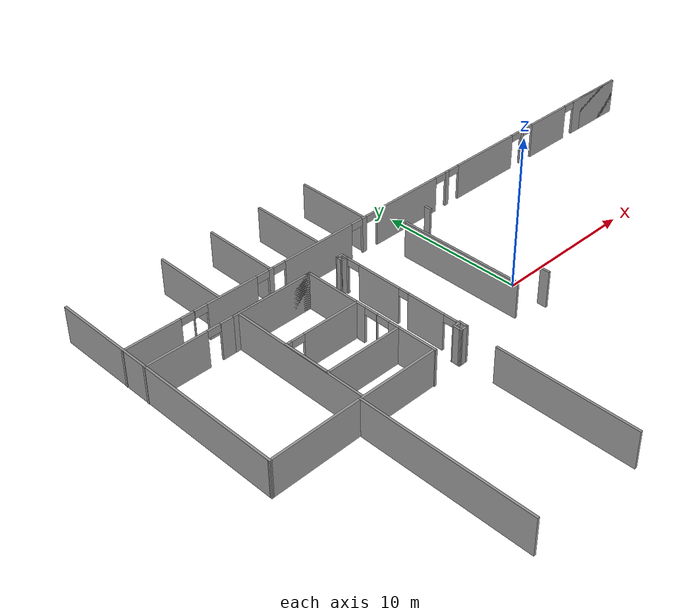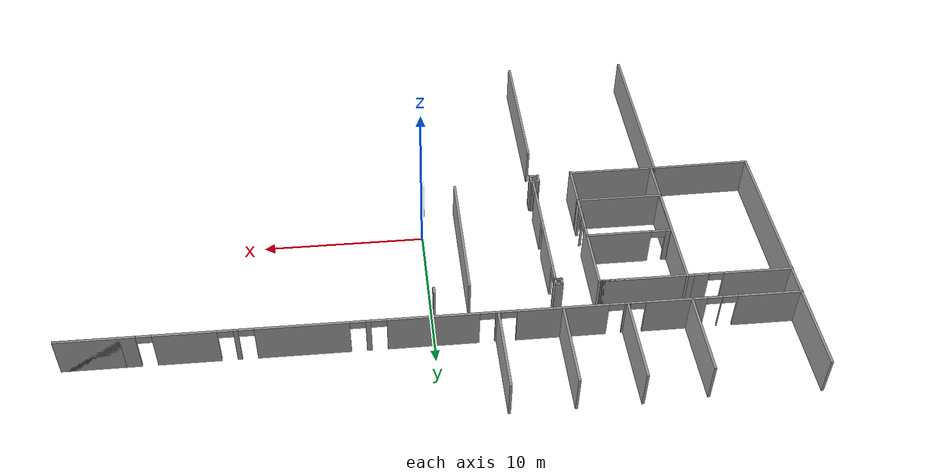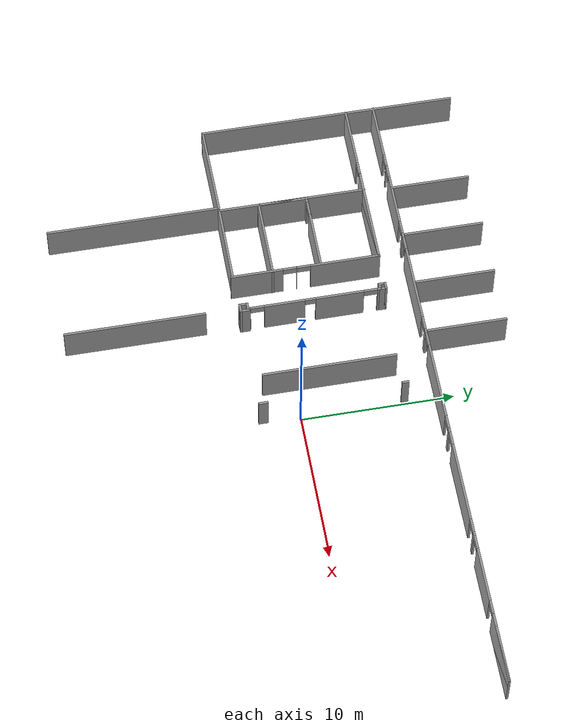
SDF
<sdf version="1.6">
 <model name="L8_4_gazebo">
  <pose>-0.001511 -0.004516 0 0 -0 0</pose>
  <link name="Wall_12">
   <pose>-15.6834 6.94104 0 0 -0 0</pose>
   <visual name="Wall_12_Visual_0">
    <pose>-3.77146 0 1.25 0 -0 0</pose>
    <geometry><box><size>4.20709 0.15 2.5</size></box></geometry>
    <material>
     <script><uri>file://media/materials/scripts/gazebo.material</uri><name>Gazebo/Grey</name></script>
     <ambient>1 1 1 1</ambient>
    </material>
    <meta><layer>0</layer></meta>
   </visual>
   <collision name="Wall_12_Collision_0">
    <geometry><box><size>4.20709 0.15 2.5</size></box></geometry>
    <pose>-3.77146 0 1.25 0 -0 0</pose>
   </collision>
   <visual name="Wall_12_Visual_1">
    <pose>2.55355 0 1.25 0 -0 0</pose>
    <geometry><box><size>6.64291 0.15 2.5</size></box></geometry>
    <material>
     <script><uri>file://media/materials/scripts/gazebo.material</uri><name>Gazebo/Grey</name></script>
     <ambient>1 1 1 1</ambient>
    </material>
    <meta><layer>0</layer></meta>
   </visual>
   <collision name="Wall_12_Collision_1">
    <geometry><box><size>6.64291 0.15 2.5</size></box></geometry>
    <pose>2.55355 0 1.25 0 -0 0</pose>
   </collision>
   <visual name="Wall_12_Visual_2">
    <pose>2.99355 0 1.25 0 -0 0</pose>
    <geometry><box><size>5.76291 0.15 2.5</size></box></geometry>
    <material>
     <script><uri>file://media/materials/scripts/gazebo.material</uri><name>Gazebo/Grey</name></script>
     <ambient>1 1 1 1</ambient>
    </material>
    <meta><layer>0</layer></meta>
   </visual>
   <collision name="Wall_12_Collision_2">
    <geometry><box><size>5.76291 0.15 2.5</size></box></geometry>
    <pose>2.99355 0 1.25 0 -0 0</pose>
   </collision>
   <visual name="Wall_12_Visual_3">
    <pose>-1.22791 0 2.25 0 -0 0</pose>
    <geometry><box><size>0.880003 0.15 0.5</size></box></geometry>
    <material>
     <script><uri>file://media/materials/scripts/gazebo.material</uri><name>Gazebo/Grey</name></script>
     <ambient>1 1 1 1</ambient>
    </material>
    <meta><layer>0</layer></meta>
   </visual>
   <collision name="Wall_12_Collision_3">
    <geometry><box><size>0.880003 0.15 0.5</size></box></geometry>
    <pose>-1.22791 0 2.25 0 -0 0</pose>
   </collision>
  </link>
  <link name="Wall_13">
   <pose>-9.88336 2.08119 0 0 -0 -1.5708</pose>
   <visual name="Wall_13_Visual_0">
    <pose>-2.63558 0 1.25 0 -0 0</pose>
    <geometry><box><size>4.59855 0.15 2.5</size></box></geometry>
    <material>
     <script><uri>file://media/materials/scripts/gazebo.material</uri><name>Gazebo/Grey</name></script>
     <ambient>1 1 1 1</ambient>
    </material>
    <meta><layer>0</layer></meta>
   </visual>
   <collision name="Wall_13_Collision_0">
    <geometry><box><size>4.59855 0.15 2.5</size></box></geometry>
    <pose>-2.63558 0 1.25 0 -0 0</pose>
   </collision>
   <visual name="Wall_13_Visual_1">
    <pose>0.576074 0 1.25 0 -0 0</pose>
    <geometry><box><size>0.024749 0.15 2.5</size></box></geometry>
    <material>
     <script><uri>file://media/materials/scripts/gazebo.material</uri><name>Gazebo/Grey</name></script>
     <ambient>1 1 1 1</ambient>
    </material>
    <meta><layer>0</layer></meta>
   </visual>
   <collision name="Wall_13_Collision_1">
    <geometry><box><size>0.024749 0.15 2.5</size></box></geometry>
    <pose>0.576074 0 1.25 0 -0 0</pose>
   </collision>
   <visual name="Wall_13_Visual_2">
    <pose>3.21165 0 1.25 0 -0 0</pose>
    <geometry><box><size>3.4464 0.15 2.5</size></box></geometry>
    <material>
     <script><uri>file://media/materials/scripts/gazebo.material</uri><name>Gazebo/Grey</name></script>
     <ambient>1 1 1 1</ambient>
    </material>
    <meta><layer>0</layer></meta>
   </visual>
   <collision name="Wall_13_Collision_2">
    <geometry><box><size>3.4464 0.15 2.5</size></box></geometry>
    <pose>3.21165 0 1.25 0 -0 0</pose>
   </collision>
   <visual name="Wall_13_Visual_3">
    <pose>0.113699 0 2.25 0 -0 0</pose>
    <geometry><box><size>0.9 0.15 0.5</size></box></geometry>
    <material>
     <script><uri>file://media/materials/scripts/gazebo.material</uri><name>Gazebo/Grey</name></script>
     <ambient>1 1 1 1</ambient>
    </material>
    <meta><layer>0</layer></meta>
   </visual>
   <collision name="Wall_13_Collision_3">
    <geometry><box><size>0.9 0.15 0.5</size></box></geometry>
    <pose>0.113699 0 2.25 0 -0 0</pose>
   </collision>
   <visual name="Wall_13_Visual_4">
    <pose>1.03845 0 2.25 0 -0 0</pose>
    <geometry><box><size>0.9 0.15 0.5</size></box></geometry>
    <material>
     <script><uri>file://media/materials/scripts/gazebo.material</uri><name>Gazebo/Grey</name></script>
     <ambient>1 1 1 1</ambient>
    </material>
    <meta><layer>0</layer></meta>
   </visual>
   <collision name="Wall_13_Collision_4">
    <geometry><box><size>0.9 0.15 0.5</size></box></geometry>
    <pose>1.03845 0 2.25 0 -0 0</pose>
   </collision>
  </link>
  <link name="Wall_14">
   <collision name="Wall_14_Collision">
    <geometry><box><size>5.5 0.15 2.5</size></box></geometry>
    <pose>0 0 1.25 0 -0 0</pose>
   </collision>
   <visual name="Wall_14_Visual">
    <pose>0 0 1.25 0 -0 0</pose>
    <geometry><box><size>5.5 0.15 2.5</size></box></geometry>
    <material>
     <script><uri>file://media/materials/scripts/gazebo.material</uri><name>Gazebo/Grey</name></script>
     <ambient>1 1 1 1</ambient>
    </material>
    <meta><layer>0</layer></meta>
   </visual>
   <pose>-12.5584 -2.71881 0 0 -0 3.14159</pose>
  </link>
  <link name="Wall_27">
   <collision name="Wall_27_Collision">
    <geometry><box><size>0.511591 0.15 2.5</size></box></geometry>
    <pose>0 0 1.25 0 -0 0</pose>
   </collision>
   <visual name="Wall_27_Visual">
    <pose>0 0 1.25 0 -0 0</pose>
    <geometry><box><size>0.511591 0.15 2.5</size></box></geometry>
    <material>
     <script><uri>file://media/materials/scripts/gazebo.material</uri><name>Gazebo/Grey</name></script>
     <ambient>1 1 1 1</ambient>
    </material>
    <meta><layer>0</layer></meta>
   </visual>
   <pose>-7.33568 6.74149 0 0 -0 1.5708</pose>
  </link>
  <link name="Wall_28">
   <collision name="Wall_28_Collision">
    <geometry><box><size>0.5 0.15 2.5</size></box></geometry>
    <pose>0 0 1.25 0 -0 0</pose>
   </collision>
   <visual name="Wall_28_Visual">
    <pose>0 0 1.25 0 -0 0</pose>
    <geometry><box><size>0.5 0.15 2.5</size></box></geometry>
    <material>
     <script><uri>file://media/materials/scripts/gazebo.material</uri><name>Gazebo/Grey</name></script>
     <ambient>1 1 1 1</ambient>
    </material>
    <meta><layer>0</layer></meta>
   </visual>
   <pose>-7.51068 6.92604 0 0 -0 3.14159</pose>
  </link>
  <link name="Wall_29">
   <collision name="Wall_29_Collision">
    <geometry><box><size>0.528824 0.15 2.5</size></box></geometry>
    <pose>0 0 1.25 0 -0 0</pose>
   </collision>
   <visual name="Wall_29_Visual">
    <pose>0 0 1.25 0 -0 0</pose>
    <geometry><box><size>0.528824 0.15 2.5</size></box></geometry>
    <material>
     <script><uri>file://media/materials/scripts/gazebo.material</uri><name>Gazebo/Grey</name></script>
     <ambient>1 1 1 1</ambient>
    </material>
    <meta><layer>0</layer></meta>
   </visual>
   <pose>-7.68943 6.73291 0 0 -0 -1.5906</pose>
  </link>
  <link name="Wall_3">
   <collision name="Wall_3_Collision">
    <geometry><box><size>11.5 0.15 2.5</size></box></geometry>
    <pose>0 0 1.25 0 -0 0</pose>
   </collision>
   <visual name="Wall_3_Visual">
    <pose>0 0 1.25 0 -0 0</pose>
    <geometry><box><size>11.5 0.15 2.5</size></box></geometry>
    <material>
     <script><uri>file://media/materials/scripts/gazebo.material</uri><name>Gazebo/Grey</name></script>
     <ambient>1 1 1 1</ambient>
    </material>
    <meta><layer>0</layer></meta>
   </visual>
   <pose>-15.3603 -8.38629 0 0 -0 1.5708</pose>
  </link>
  <link name="Wall_30">
   <collision name="Wall_30_Collision">
    <geometry><box><size>0.5 0.15 2.5</size></box></geometry>
    <pose>0 0 1.25 0 -0 0</pose>
   </collision>
   <visual name="Wall_30_Visual">
    <pose>0 0 1.25 0 -0 0</pose>
    <geometry><box><size>0.5 0.15 2.5</size></box></geometry>
    <material>
     <script><uri>file://media/materials/scripts/gazebo.material</uri><name>Gazebo/Grey</name></script>
     <ambient>1 1 1 1</ambient>
    </material>
    <meta><layer>0</layer></meta>
   </visual>
   <pose>-7.51818 6.54354 0 0 -0 0</pose>
  </link>
  <link name="Wall_31">
   <collision name="Wall_31_Collision">
    <geometry><box><size>0.5 0.15 2.5</size></box></geometry>
    <pose>0 0 1.25 0 -0 0</pose>
   </collision>
   <visual name="Wall_31_Visual">
    <pose>0 0 1.25 0 -0 0</pose>
    <geometry><box><size>0.5 0.15 2.5</size></box></geometry>
    <material>
     <script><uri>file://media/materials/scripts/gazebo.material</uri><name>Gazebo/Grey</name></script>
     <ambient>1 1 1 1</ambient>
    </material>
    <meta><layer>0</layer></meta>
   </visual>
   <pose>-7.51818 6.54354 0 0 -0 3.14159</pose>
  </link>
  <link name="Wall_32">
   <collision name="Wall_32_Collision">
    <geometry><box><size>0.5 0.15 2.5</size></box></geometry>
    <pose>0 0 1.25 0 -0 0</pose>
   </collision>
   <visual name="Wall_32_Visual">
    <pose>0 0 1.25 0 -0 0</pose>
    <geometry><box><size>0.5 0.15 2.5</size></box></geometry>
    <material>
     <script><uri>file://media/materials/scripts/gazebo.material</uri><name>Gazebo/Grey</name></script>
     <ambient>1 1 1 1</ambient>
    </material>
    <meta><layer>0</layer></meta>
   </visual>
   <pose>-7.51443 6.53979 0 0 -0 0</pose>
  </link>
  <link name="Wall_34">
   <collision name="Wall_34_Collision">
    <geometry><box><size>0.461188 0.15 2.5</size></box></geometry>
    <pose>0 0 1.25 0 -0 0</pose>
   </collision>
   <visual name="Wall_34_Visual">
    <pose>0 0 1.25 0 -0 0</pose>
    <geometry><box><size>0.461188 0.15 2.5</size></box></geometry>
    <material>
     <script><uri>file://media/materials/scripts/gazebo.material</uri><name>Gazebo/Grey</name></script>
     <ambient>1 1 1 1</ambient>
    </material>
    <meta><layer>0</layer></meta>
   </visual>
   <pose>-0.156622 6.77306 0 0 -0 1.5708</pose>
  </link>
  <link name="Wall_4">
   <collision name="Wall_4_Collision">
    <geometry><box><size>6.25 0.15 2.5</size></box></geometry>
    <pose>0 0 1.25 0 -0 0</pose>
   </collision>
   <visual name="Wall_4_Visual">
    <pose>0 0 1.25 0 -0 0</pose>
    <geometry><box><size>6.25 0.15 2.5</size></box></geometry>
    <material>
     <script><uri>file://media/materials/scripts/gazebo.material</uri><name>Gazebo/Grey</name></script>
     <ambient>1 1 1 1</ambient>
    </material>
    <meta><layer>0</layer></meta>
   </visual>
   <pose>-18.4103 -2.7502 0 0 -0 -3.12884</pose>
  </link>
  <link name="Wall_48">
   <collision name="Wall_48_Collision">
    <geometry><box><size>0.633272 0.15 2.5</size></box></geometry>
    <pose>0 0 1.25 0 -0 0</pose>
   </collision>
   <visual name="Wall_48_Visual">
    <pose>0 0 1.25 0 -0 0</pose>
    <geometry><box><size>0.633272 0.15 2.5</size></box></geometry>
    <material>
     <script><uri>file://media/materials/scripts/gazebo.material</uri><name>Gazebo/Grey</name></script>
     <ambient>1 1 1 1</ambient>
    </material>
    <meta><layer>0</layer></meta>
   </visual>
   <pose>-0.204577 -2.39249 0 0 -0 -1.5708</pose>
  </link>
  <link name="Wall_5">
   <collision name="Wall_5_Collision">
    <geometry><box><size>17 0.15 2.5</size></box></geometry>
    <pose>0 0 1.25 0 -0 0</pose>
   </collision>
   <visual name="Wall_5_Visual">
    <pose>0 0 1.25 0 -0 0</pose>
    <geometry><box><size>17 0.15 2.5</size></box></geometry>
    <material>
     <script><uri>file://media/materials/scripts/gazebo.material</uri><name>Gazebo/Grey</name></script>
     <ambient>1 1 1 1</ambient>
    </material>
    <meta><layer>0</layer></meta>
   </visual>
   <pose>-21.4603 5.63589 0 0 -0 1.5708</pose>
  </link>
  <link name="Wall_52">
   <collision name="Wall_52_Collision">
    <geometry><box><size>0.503242 0.15 2.5</size></box></geometry>
    <pose>0 0 1.25 0 -0 0</pose>
   </collision>
   <visual name="Wall_52_Visual">
    <pose>0 0 1.25 0 -0 0</pose>
    <geometry><box><size>0.503242 0.15 2.5</size></box></geometry>
    <material>
     <script><uri>file://media/materials/scripts/gazebo.material</uri><name>Gazebo/Grey</name></script>
     <ambient>1 1 1 1</ambient>
    </material>
    <meta><layer>0</layer></meta>
   </visual>
   <pose>-7.51136 -2.14437 0 0 -0 3.14159</pose>
  </link>
  <link name="Wall_53">
   <collision name="Wall_53_Collision">
    <geometry><box><size>0.636557 0.15 2.5</size></box></geometry>
    <pose>0 0 1.25 0 -0 0</pose>
   </collision>
   <visual name="Wall_53_Visual">
    <pose>0 0 1.25 0 -0 0</pose>
    <geometry><box><size>0.636557 0.15 2.5</size></box></geometry>
    <material>
     <script><uri>file://media/materials/scripts/gazebo.material</uri><name>Gazebo/Grey</name></script>
     <ambient>1 1 1 1</ambient>
    </material>
    <meta><layer>0</layer></meta>
   </visual>
   <pose>-7.69123 -2.38763 0 0 -0 -1.58413</pose>
  </link>
  <link name="Wall_54">
   <collision name="Wall_54_Collision">
    <geometry><box><size>0.626787 0.15 2.5</size></box></geometry>
    <pose>0 0 1.25 0 -0 0</pose>
   </collision>
   <visual name="Wall_54_Visual">
    <pose>0 0 1.25 0 -0 0</pose>
    <geometry><box><size>0.626787 0.15 2.5</size></box></geometry>
    <material>
     <script><uri>file://media/materials/scripts/gazebo.material</uri><name>Gazebo/Grey</name></script>
     <ambient>1 1 1 1</ambient>
    </material>
    <meta><layer>0</layer></meta>
   </visual>
   <pose>-7.45607 -2.63089 0 0 -0 0</pose>
  </link>
  <link name="Wall_55">
   <collision name="Wall_55_Collision">
    <geometry><box><size>0.675423 0.15 2.5</size></box></geometry>
    <pose>0 0 1.25 0 -0 0</pose>
   </collision>
   <visual name="Wall_55_Visual">
    <pose>0 0 1.25 0 -0 0</pose>
    <geometry><box><size>0.675423 0.15 2.5</size></box></geometry>
    <material>
     <script><uri>file://media/materials/scripts/gazebo.material</uri><name>Gazebo/Grey</name></script>
     <ambient>1 1 1 1</ambient>
    </material>
    <meta><layer>0</layer></meta>
   </visual>
   <pose>-7.21768 -2.36818 0 0 -0 1.5708</pose>
  </link>
  <link name="Wall_60">
   <pose>-7.33002 2.2006 0 0 -0 1.57296</pose>
   <visual name="Wall_60_Visual_0">
    <pose>-4.30112 0 1.25 0 -0 0</pose>
    <geometry><box><size>0.226146 0.15 2.5</size></box></geometry>
    <material>
     <script><uri>file://media/materials/scripts/gazebo.material</uri><name>Gazebo/Grey</name></script>
     <ambient>1 1 1 1</ambient>
    </material>
    <meta><layer>0</layer></meta>
   </visual>
   <collision name="Wall_60_Collision_0">
    <geometry><box><size>0.226146 0.15 2.5</size></box></geometry>
    <pose>-4.30112 0 1.25 0 -0 0</pose>
   </collision>
   <visual name="Wall_60_Visual_1">
    <pose>-1.95063 0 1.25 0 -0 0</pose>
    <geometry><box><size>2.67484 0.15 2.5</size></box></geometry>
    <material>
     <script><uri>file://media/materials/scripts/gazebo.material</uri><name>Gazebo/Grey</name></script>
     <ambient>1 1 1 1</ambient>
    </material>
    <meta><layer>0</layer></meta>
   </visual>
   <collision name="Wall_60_Collision_1">
    <geometry><box><size>2.67484 0.15 2.5</size></box></geometry>
    <pose>-1.95063 0 1.25 0 -0 0</pose>
   </collision>
   <visual name="Wall_60_Visual_2">
    <pose>1.67068 0 1.25 0 -0 0</pose>
    <geometry><box><size>3.16778 0.15 2.5</size></box></geometry>
    <material>
     <script><uri>file://media/materials/scripts/gazebo.material</uri><name>Gazebo/Grey</name></script>
     <ambient>1 1 1 1</ambient>
    </material>
    <meta><layer>0</layer></meta>
   </visual>
   <collision name="Wall_60_Collision_2">
    <geometry><box><size>3.16778 0.15 2.5</size></box></geometry>
    <pose>1.67068 0 1.25 0 -0 0</pose>
   </collision>
   <visual name="Wall_60_Visual_3">
    <pose>4.28438 0 1.25 0 -0 0</pose>
    <geometry><box><size>0.259618 0.15 2.5</size></box></geometry>
    <material>
     <script><uri>file://media/materials/scripts/gazebo.material</uri><name>Gazebo/Grey</name></script>
     <ambient>1 1 1 1</ambient>
    </material>
    <meta><layer>0</layer></meta>
   </visual>
   <collision name="Wall_60_Collision_3">
    <geometry><box><size>0.259618 0.15 2.5</size></box></geometry>
    <pose>4.28438 0 1.25 0 -0 0</pose>
   </collision>
   <visual name="Wall_60_Visual_4">
    <pose>-3.73805 0 2.25 0 -0 0</pose>
    <geometry><box><size>0.9 0.15 0.5</size></box></geometry>
    <material>
     <script><uri>file://media/materials/scripts/gazebo.material</uri><name>Gazebo/Grey</name></script>
     <ambient>1 1 1 1</ambient>
    </material>
    <meta><layer>0</layer></meta>
   </visual>
   <collision name="Wall_60_Collision_4">
    <geometry><box><size>0.9 0.15 0.5</size></box></geometry>
    <pose>-3.73805 0 2.25 0 -0 0</pose>
   </collision>
   <visual name="Wall_60_Visual_5">
    <pose>-0.26321 0 2.25 0 -0 0</pose>
    <geometry><box><size>0.7 0.15 0.5</size></box></geometry>
    <material>
     <script><uri>file://media/materials/scripts/gazebo.material</uri><name>Gazebo/Grey</name></script>
     <ambient>1 1 1 1</ambient>
    </material>
    <meta><layer>0</layer></meta>
   </visual>
   <collision name="Wall_60_Collision_5">
    <geometry><box><size>0.7 0.15 0.5</size></box></geometry>
    <pose>-0.26321 0 2.25 0 -0 0</pose>
   </collision>
   <visual name="Wall_60_Visual_6">
    <pose>3.70457 0 2.25 0 -0 0</pose>
    <geometry><box><size>0.9 0.15 0.5</size></box></geometry>
    <material>
     <script><uri>file://media/materials/scripts/gazebo.material</uri><name>Gazebo/Grey</name></script>
     <ambient>1 1 1 1</ambient>
    </material>
    <meta><layer>0</layer></meta>
   </visual>
   <collision name="Wall_60_Collision_6">
    <geometry><box><size>0.9 0.15 0.5</size></box></geometry>
    <pose>3.70457 0 2.25 0 -0 0</pose>
   </collision>
  </link>
  <link name="Wall_62">
   <pose>-12.5204 3.09631 0 0 -0 3.14159</pose>
   <visual name="Wall_62_Visual_0">
    <pose>-0.676667 0 1.25 0 -0 0</pose>
    <geometry><box><size>4.03389 0.15 2.5</size></box></geometry>
    <material>
     <script><uri>file://media/materials/scripts/gazebo.material</uri><name>Gazebo/Grey</name></script>
     <ambient>1 1 1 1</ambient>
    </material>
    <meta><layer>0</layer></meta>
   </visual>
   <collision name="Wall_62_Collision_0">
    <geometry><box><size>4.03389 0.15 2.5</size></box></geometry>
    <pose>-0.676667 0 1.25 0 -0 0</pose>
   </collision>
   <visual name="Wall_62_Visual_1">
    <pose>2.46694 0 1.25 0 -0 0</pose>
    <geometry><box><size>0.453334 0.15 2.5</size></box></geometry>
    <material>
     <script><uri>file://media/materials/scripts/gazebo.material</uri><name>Gazebo/Grey</name></script>
     <ambient>1 1 1 1</ambient>
    </material>
    <meta><layer>0</layer></meta>
   </visual>
   <collision name="Wall_62_Collision_1">
    <geometry><box><size>0.453334 0.15 2.5</size></box></geometry>
    <pose>2.46694 0 1.25 0 -0 0</pose>
   </collision>
   <visual name="Wall_62_Visual_2">
    <pose>1.79028 0 2.25 0 -0 0</pose>
    <geometry><box><size>0.9 0.15 0.5</size></box></geometry>
    <material>
     <script><uri>file://media/materials/scripts/gazebo.material</uri><name>Gazebo/Grey</name></script>
     <ambient>1 1 1 1</ambient>
    </material>
    <meta><layer>0</layer></meta>
   </visual>
   <collision name="Wall_62_Collision_2">
    <geometry><box><size>0.9 0.15 0.5</size></box></geometry>
    <pose>1.79028 0 2.25 0 -0 0</pose>
   </collision>
  </link>
  <link name="Wall_63">
   <collision name="Wall_63_Collision">
    <geometry><box><size>3.35296 0.15 2.5</size></box></geometry>
    <pose>0 0 1.25 0 -0 0</pose>
   </collision>
   <visual name="Wall_63_Visual">
    <pose>0 0 1.25 0 -0 0</pose>
    <geometry><box><size>3.35296 0.15 2.5</size></box></geometry>
    <material>
     <script><uri>file://media/materials/scripts/gazebo.material</uri><name>Gazebo/Grey</name></script>
     <ambient>1 1 1 1</ambient>
    </material>
    <meta><layer>0</layer></meta>
   </visual>
   <pose>-15.1133 1.49485 0 0 -0 -1.56544</pose>
  </link>
  <link name="Wall_64">
   <collision name="Wall_64_Collision">
    <geometry><box><size>5.38722 0.15 2.5</size></box></geometry>
    <pose>0 0 1.25 0 -0 0</pose>
   </collision>
   <visual name="Wall_64_Visual">
    <pose>0 0 1.25 0 -0 0</pose>
    <geometry><box><size>5.38722 0.15 2.5</size></box></geometry>
    <material>
     <script><uri>file://media/materials/scripts/gazebo.material</uri><name>Gazebo/Grey</name></script>
     <ambient>1 1 1 1</ambient>
    </material>
    <meta><layer>0</layer></meta>
   </visual>
   <pose>-12.4861 -0.089452 0 0 -0 0</pose>
  </link>
  <link name="Wall_66">
   <collision name="Wall_66_Collision">
    <geometry><box><size>9.75 0.15 2.5</size></box></geometry>
    <pose>0 0 1.25 0 -0 0</pose>
   </collision>
   <visual name="Wall_66_Visual">
    <pose>0 0 1.25 0 -0 0</pose>
    <geometry><box><size>9.75 0.15 2.5</size></box></geometry>
    <material>
     <script><uri>file://media/materials/scripts/gazebo.material</uri><name>Gazebo/Grey</name></script>
     <ambient>1 1 1 1</ambient>
    </material>
    <meta><layer>0</layer></meta>
   </visual>
   <pose>-15.1512 2.15979 0 0 -0 -1.5708</pose>
  </link>
  <link name="Wall_68">
   <collision name="Wall_68_Collision">
    <geometry><box><size>8.75 0.15 2.5</size></box></geometry>
    <pose>0 0 1.25 0 -0 0</pose>
   </collision>
   <visual name="Wall_68_Visual">
    <pose>0 0 1.25 0 -0 0</pose>
    <geometry><box><size>8.75 0.15 2.5</size></box></geometry>
    <material>
     <script><uri>file://media/materials/scripts/gazebo.material</uri><name>Gazebo/Grey</name></script>
     <ambient>1 1 1 1</ambient>
    </material>
    <meta><layer>0</layer></meta>
   </visual>
   <pose>-2.25805 2.2656 0 0 -0 -1.5708</pose>
  </link>
  <link name="Wall_7">
   <pose>-0.064697 8.8039 0 0 -0 0</pose>
   <visual name="Wall_7_Visual_0">
    <pose>-19.5592 0 1.25 0 -0 0</pose>
    <geometry><box><size>3.8815 0.15 2.5</size></box></geometry>
    <material>
     <script><uri>file://media/materials/scripts/gazebo.material</uri><name>Gazebo/Grey</name></script>
     <ambient>1 1 1 1</ambient>
    </material>
    <meta><layer>0</layer></meta>
   </visual>
   <collision name="Wall_7_Collision_0">
    <geometry><box><size>3.8815 0.15 2.5</size></box></geometry>
    <pose>-19.5592 0 1.25 0 -0 0</pose>
   </collision>
   <visual name="Wall_7_Visual_1">
    <pose>-16.7066 0 1.25 0 -0 0</pose>
    <geometry><box><size>0.023864 0.15 2.5</size></box></geometry>
    <material>
     <script><uri>file://media/materials/scripts/gazebo.material</uri><name>Gazebo/Grey</name></script>
     <ambient>1 1 1 1</ambient>
    </material>
    <meta><layer>0</layer></meta>
   </visual>
   <collision name="Wall_7_Collision_1">
    <geometry><box><size>0.023864 0.15 2.5</size></box></geometry>
    <pose>-16.7066 0 1.25 0 -0 0</pose>
   </collision>
   <visual name="Wall_7_Visual_2">
    <pose>-13.9969 0 1.25 0 -0 0</pose>
    <geometry><box><size>3.59538 0.15 2.5</size></box></geometry>
    <material>
     <script><uri>file://media/materials/scripts/gazebo.material</uri><name>Gazebo/Grey</name></script>
     <ambient>1 1 1 1</ambient>
    </material>
    <meta><layer>0</layer></meta>
   </visual>
   <collision name="Wall_7_Collision_2">
    <geometry><box><size>3.59538 0.15 2.5</size></box></geometry>
    <pose>-13.9969 0 1.25 0 -0 0</pose>
   </collision>
   <visual name="Wall_7_Visual_3">
    <pose>-11.1235 0 1.25 0 -0 0</pose>
    <geometry><box><size>0.351452 0.15 2.5</size></box></geometry>
    <material>
     <script><uri>file://media/materials/scripts/gazebo.material</uri><name>Gazebo/Grey</name></script>
     <ambient>1 1 1 1</ambient>
    </material>
    <meta><layer>0</layer></meta>
   </visual>
   <collision name="Wall_7_Collision_3">
    <geometry><box><size>0.351452 0.15 2.5</size></box></geometry>
    <pose>-11.1235 0 1.25 0 -0 0</pose>
   </collision>
   <visual name="Wall_7_Visual_4">
    <pose>-7.37239 0 1.25 0 -0 0</pose>
    <geometry><box><size>5.35082 0.15 2.5</size></box></geometry>
    <material>
     <script><uri>file://media/materials/scripts/gazebo.material</uri><name>Gazebo/Grey</name></script>
     <ambient>1 1 1 1</ambient>
    </material>
    <meta><layer>0</layer></meta>
   </visual>
   <collision name="Wall_7_Collision_4">
    <geometry><box><size>5.35082 0.15 2.5</size></box></geometry>
    <pose>-7.37239 0 1.25 0 -0 0</pose>
   </collision>
   <visual name="Wall_7_Visual_5">
    <pose>-3.62411 0 1.25 0 -0 0</pose>
    <geometry><box><size>0.345738 0.15 2.5</size></box></geometry>
    <material>
     <script><uri>file://media/materials/scripts/gazebo.material</uri><name>Gazebo/Grey</name></script>
     <ambient>1 1 1 1</ambient>
    </material>
    <meta><layer>0</layer></meta>
   </visual>
   <collision name="Wall_7_Collision_5">
    <geometry><box><size>0.345738 0.15 2.5</size></box></geometry>
    <pose>-3.62411 0 1.25 0 -0 0</pose>
   </collision>
   <visual name="Wall_7_Visual_6">
    <pose>0.115263 0 1.25 0 -0 0</pose>
    <geometry><box><size>5.333 0.15 2.5</size></box></geometry>
    <material>
     <script><uri>file://media/materials/scripts/gazebo.material</uri><name>Gazebo/Grey</name></script>
     <ambient>1 1 1 1</ambient>
    </material>
    <meta><layer>0</layer></meta>
   </visual>
   <collision name="Wall_7_Collision_6">
    <geometry><box><size>5.333 0.15 2.5</size></box></geometry>
    <pose>0.115263 0 1.25 0 -0 0</pose>
   </collision>
   <visual name="Wall_7_Visual_7">
    <pose>3.83681 0 1.25 0 -0 0</pose>
    <geometry><box><size>0.310088 0.15 2.5</size></box></geometry>
    <material>
     <script><uri>file://media/materials/scripts/gazebo.material</uri><name>Gazebo/Grey</name></script>
     <ambient>1 1 1 1</ambient>
    </material>
    <meta><layer>0</layer></meta>
   </visual>
   <collision name="Wall_7_Collision_7">
    <geometry><box><size>0.310088 0.15 2.5</size></box></geometry>
    <pose>3.83681 0 1.25 0 -0 0</pose>
   </collision>
   <visual name="Wall_7_Visual_8">
    <pose>7.59028 0 1.25 0 -0 0</pose>
    <geometry><box><size>5.39687 0.15 2.5</size></box></geometry>
    <material>
     <script><uri>file://media/materials/scripts/gazebo.material</uri><name>Gazebo/Grey</name></script>
     <ambient>1 1 1 1</ambient>
    </material>
    <meta><layer>0</layer></meta>
   </visual>
   <collision name="Wall_7_Collision_8">
    <geometry><box><size>5.39687 0.15 2.5</size></box></geometry>
    <pose>7.59028 0 1.25 0 -0 0</pose>
   </collision>
   <visual name="Wall_7_Visual_9">
    <pose>11.322 0 1.25 0 -0 0</pose>
    <geometry><box><size>0.266576 0.15 2.5</size></box></geometry>
    <material>
     <script><uri>file://media/materials/scripts/gazebo.material</uri><name>Gazebo/Grey</name></script>
     <ambient>1 1 1 1</ambient>
    </material>
    <meta><layer>0</layer></meta>
   </visual>
   <collision name="Wall_7_Collision_9">
    <geometry><box><size>0.266576 0.15 2.5</size></box></geometry>
    <pose>11.322 0 1.25 0 -0 0</pose>
   </collision>
   <visual name="Wall_7_Visual_10">
    <pose>14.1757 0 1.25 0 -0 0</pose>
    <geometry><box><size>3.64085 0.15 2.5</size></box></geometry>
    <material>
     <script><uri>file://media/materials/scripts/gazebo.material</uri><name>Gazebo/Grey</name></script>
     <ambient>1 1 1 1</ambient>
    </material>
    <meta><layer>0</layer></meta>
   </visual>
   <collision name="Wall_7_Collision_10">
    <geometry><box><size>3.64085 0.15 2.5</size></box></geometry>
    <pose>14.1757 0 1.25 0 -0 0</pose>
   </collision>
   <visual name="Wall_7_Visual_11">
    <pose>19.1981 0 1.25 0 -0 0</pose>
    <geometry><box><size>4.60385 0.15 2.5</size></box></geometry>
    <material>
     <script><uri>file://media/materials/scripts/gazebo.material</uri><name>Gazebo/Grey</name></script>
     <ambient>1 1 1 1</ambient>
    </material>
    <meta><layer>0</layer></meta>
   </visual>
   <collision name="Wall_7_Collision_11">
    <geometry><box><size>4.60385 0.15 2.5</size></box></geometry>
    <pose>19.1981 0 1.25 0 -0 0</pose>
   </collision>
   <visual name="Wall_7_Visual_12">
    <pose>19.6422 0 1.25 0 -0 0</pose>
    <geometry><box><size>3.71562 0.15 2.5</size></box></geometry>
    <material>
     <script><uri>file://media/materials/scripts/gazebo.material</uri><name>Gazebo/Grey</name></script>
     <ambient>1 1 1 1</ambient>
    </material>
    <meta><layer>0</layer></meta>
   </visual>
   <collision name="Wall_7_Collision_12">
    <geometry><box><size>3.71562 0.15 2.5</size></box></geometry>
    <pose>19.6422 0 1.25 0 -0 0</pose>
   </collision>
   <visual name="Wall_7_Visual_13">
    <pose>-17.1685 0 2.25 0 -0 0</pose>
    <geometry><box><size>0.9 0.15 0.5</size></box></geometry>
    <material>
     <script><uri>file://media/materials/scripts/gazebo.material</uri><name>Gazebo/Grey</name></script>
     <ambient>1 1 1 1</ambient>
    </material>
    <meta><layer>0</layer></meta>
   </visual>
   <collision name="Wall_7_Collision_13">
    <geometry><box><size>0.9 0.15 0.5</size></box></geometry>
    <pose>-17.1685 0 2.25 0 -0 0</pose>
   </collision>
   <visual name="Wall_7_Visual_14">
    <pose>-16.2446 0 2.25 0 -0 0</pose>
    <geometry><box><size>0.9 0.15 0.5</size></box></geometry>
    <material>
     <script><uri>file://media/materials/scripts/gazebo.material</uri><name>Gazebo/Grey</name></script>
     <ambient>1 1 1 1</ambient>
    </material>
    <meta><layer>0</layer></meta>
   </visual>
   <collision name="Wall_7_Collision_14">
    <geometry><box><size>0.9 0.15 0.5</size></box></geometry>
    <pose>-16.2446 0 2.25 0 -0 0</pose>
   </collision>
   <visual name="Wall_7_Visual_15">
    <pose>-11.7492 0 2.25 0 -0 0</pose>
    <geometry><box><size>0.9 0.15 0.5</size></box></geometry>
    <material>
     <script><uri>file://media/materials/scripts/gazebo.material</uri><name>Gazebo/Grey</name></script>
     <ambient>1 1 1 1</ambient>
    </material>
    <meta><layer>0</layer></meta>
   </visual>
   <collision name="Wall_7_Collision_15">
    <geometry><box><size>0.9 0.15 0.5</size></box></geometry>
    <pose>-11.7492 0 2.25 0 -0 0</pose>
   </collision>
   <visual name="Wall_7_Visual_16">
    <pose>-10.4978 0 2.25 0 -0 0</pose>
    <geometry><box><size>0.9 0.15 0.5</size></box></geometry>
    <material>
     <script><uri>file://media/materials/scripts/gazebo.material</uri><name>Gazebo/Grey</name></script>
     <ambient>1 1 1 1</ambient>
    </material>
    <meta><layer>0</layer></meta>
   </visual>
   <collision name="Wall_7_Collision_16">
    <geometry><box><size>0.9 0.15 0.5</size></box></geometry>
    <pose>-10.4978 0 2.25 0 -0 0</pose>
   </collision>
   <visual name="Wall_7_Visual_17">
    <pose>-4.24697 0 2.25 0 -0 0</pose>
    <geometry><box><size>0.9 0.15 0.5</size></box></geometry>
    <material>
     <script><uri>file://media/materials/scripts/gazebo.material</uri><name>Gazebo/Grey</name></script>
     <ambient>1 1 1 1</ambient>
    </material>
    <meta><layer>0</layer></meta>
   </visual>
   <collision name="Wall_7_Collision_17">
    <geometry><box><size>0.9 0.15 0.5</size></box></geometry>
    <pose>-4.24697 0 2.25 0 -0 0</pose>
   </collision>
   <visual name="Wall_7_Visual_18">
    <pose>-3.00124 0 2.25 0 -0 0</pose>
    <geometry><box><size>0.9 0.15 0.5</size></box></geometry>
    <material>
     <script><uri>file://media/materials/scripts/gazebo.material</uri><name>Gazebo/Grey</name></script>
     <ambient>1 1 1 1</ambient>
    </material>
    <meta><layer>0</layer></meta>
   </visual>
   <collision name="Wall_7_Collision_18">
    <geometry><box><size>0.9 0.15 0.5</size></box></geometry>
    <pose>-3.00124 0 2.25 0 -0 0</pose>
   </collision>
   <visual name="Wall_7_Visual_19">
    <pose>3.23176 0 2.25 0 -0 0</pose>
    <geometry><box><size>0.9 0.15 0.5</size></box></geometry>
    <material>
     <script><uri>file://media/materials/scripts/gazebo.material</uri><name>Gazebo/Grey</name></script>
     <ambient>1 1 1 1</ambient>
    </material>
    <meta><layer>0</layer></meta>
   </visual>
   <collision name="Wall_7_Collision_19">
    <geometry><box><size>0.9 0.15 0.5</size></box></geometry>
    <pose>3.23176 0 2.25 0 -0 0</pose>
   </collision>
   <visual name="Wall_7_Visual_20">
    <pose>4.44185 0 2.25 0 -0 0</pose>
    <geometry><box><size>0.9 0.15 0.5</size></box></geometry>
    <material>
     <script><uri>file://media/materials/scripts/gazebo.material</uri><name>Gazebo/Grey</name></script>
     <ambient>1 1 1 1</ambient>
    </material>
    <meta><layer>0</layer></meta>
   </visual>
   <collision name="Wall_7_Collision_20">
    <geometry><box><size>0.9 0.15 0.5</size></box></geometry>
    <pose>4.44185 0 2.25 0 -0 0</pose>
   </collision>
   <visual name="Wall_7_Visual_21">
    <pose>10.7387 0 2.25 0 -0 0</pose>
    <geometry><box><size>0.9 0.15 0.5</size></box></geometry>
    <material>
     <script><uri>file://media/materials/scripts/gazebo.material</uri><name>Gazebo/Grey</name></script>
     <ambient>1 1 1 1</ambient>
    </material>
    <meta><layer>0</layer></meta>
   </visual>
   <collision name="Wall_7_Collision_21">
    <geometry><box><size>0.9 0.15 0.5</size></box></geometry>
    <pose>10.7387 0 2.25 0 -0 0</pose>
   </collision>
   <visual name="Wall_7_Visual_22">
    <pose>11.9053 0 2.25 0 -0 0</pose>
    <geometry><box><size>0.9 0.15 0.5</size></box></geometry>
    <material>
     <script><uri>file://media/materials/scripts/gazebo.material</uri><name>Gazebo/Grey</name></script>
     <ambient>1 1 1 1</ambient>
    </material>
    <meta><layer>0</layer></meta>
   </visual>
   <collision name="Wall_7_Collision_22">
    <geometry><box><size>0.9 0.15 0.5</size></box></geometry>
    <pose>11.9053 0 2.25 0 -0 0</pose>
   </collision>
   <visual name="Wall_7_Visual_23">
    <pose>16.4403 0 2.25 0 -0 0</pose>
    <geometry><box><size>0.888231 0.15 0.5</size></box></geometry>
    <material>
     <script><uri>file://media/materials/scripts/gazebo.material</uri><name>Gazebo/Grey</name></script>
     <ambient>1 1 1 1</ambient>
    </material>
    <meta><layer>0</layer></meta>
   </visual>
   <collision name="Wall_7_Collision_23">
    <geometry><box><size>0.888231 0.15 0.5</size></box></geometry>
    <pose>16.4403 0 2.25 0 -0 0</pose>
   </collision>
  </link>
  <link name="Wall_74">
   <collision name="Wall_74_Collision">
    <geometry><box><size>5.25 0.15 2.5</size></box></geometry>
    <pose>0 0 1.25 0 -0 0</pose>
   </collision>
   <visual name="Wall_74_Visual">
    <pose>0 0 1.25 0 -0 0</pose>
    <geometry><box><size>5.25 0.15 2.5</size></box></geometry>
    <material>
     <script><uri>file://media/materials/scripts/gazebo.material</uri><name>Gazebo/Grey</name></script>
     <ambient>1 1 1 1</ambient>
    </material>
    <meta><layer>0</layer></meta>
   </visual>
   <pose>-14.9681 11.3642 0 0 -0 -1.5708</pose>
  </link>
  <link name="Wall_76">
   <collision name="Wall_76_Collision">
    <geometry><box><size>5.25 0.15 2.5</size></box></geometry>
    <pose>0 0 1.25 0 -0 0</pose>
   </collision>
   <visual name="Wall_76_Visual">
    <pose>0 0 1.25 0 -0 0</pose>
    <geometry><box><size>5.25 0.15 2.5</size></box></geometry>
    <material>
     <script><uri>file://media/materials/scripts/gazebo.material</uri><name>Gazebo/Grey</name></script>
     <ambient>1 1 1 1</ambient>
    </material>
    <meta><layer>0</layer></meta>
   </visual>
   <pose>-11.1946 11.5113 0 0 -0 -1.5708</pose>
  </link>
  <link name="Wall_78">
   <collision name="Wall_78_Collision">
    <geometry><box><size>5.25 0.15 2.5</size></box></geometry>
    <pose>0 0 1.25 0 -0 0</pose>
   </collision>
   <visual name="Wall_78_Visual">
    <pose>0 0 1.25 0 -0 0</pose>
    <geometry><box><size>5.25 0.15 2.5</size></box></geometry>
    <material>
     <script><uri>file://media/materials/scripts/gazebo.material</uri><name>Gazebo/Grey</name></script>
     <ambient>1 1 1 1</ambient>
    </material>
    <meta><layer>0</layer></meta>
   </visual>
   <pose>-7.43813 11.5113 0 0 -0 -1.5708</pose>
  </link>
  <link name="Wall_80">
   <collision name="Wall_80_Collision">
    <geometry><box><size>5.25 0.15 2.5</size></box></geometry>
    <pose>0 0 1.25 0 -0 0</pose>
   </collision>
   <visual name="Wall_80_Visual">
    <pose>0 0 1.25 0 -0 0</pose>
    <geometry><box><size>5.25 0.15 2.5</size></box></geometry>
    <material>
     <script><uri>file://media/materials/scripts/gazebo.material</uri><name>Gazebo/Grey</name></script>
     <ambient>1 1 1 1</ambient>
    </material>
    <meta><layer>0</layer></meta>
   </visual>
   <pose>-3.68171 11.5113 0 0 -0 -1.5708</pose>
  </link>
  <link name="Wall_92">
   <collision name="Wall_92_Collision">
    <geometry><box><size>9.25 0.15 2.5</size></box></geometry>
    <pose>0 0 1.25 0 -0 0</pose>
   </collision>
   <visual name="Wall_92_Visual">
    <pose>0 0 1.25 0 -0 0</pose>
    <geometry><box><size>9.25 0.15 2.5</size></box></geometry>
    <material>
     <script><uri>file://media/materials/scripts/gazebo.material</uri><name>Gazebo/Grey</name></script>
     <ambient>1 1 1 1</ambient>
    </material>
    <meta><layer>0</layer></meta>
   </visual>
   <pose>-7.42559 -9.50681 0 0 -0 1.5708</pose>
  </link>
  <static>1</static>
 </model>
</sdf>
